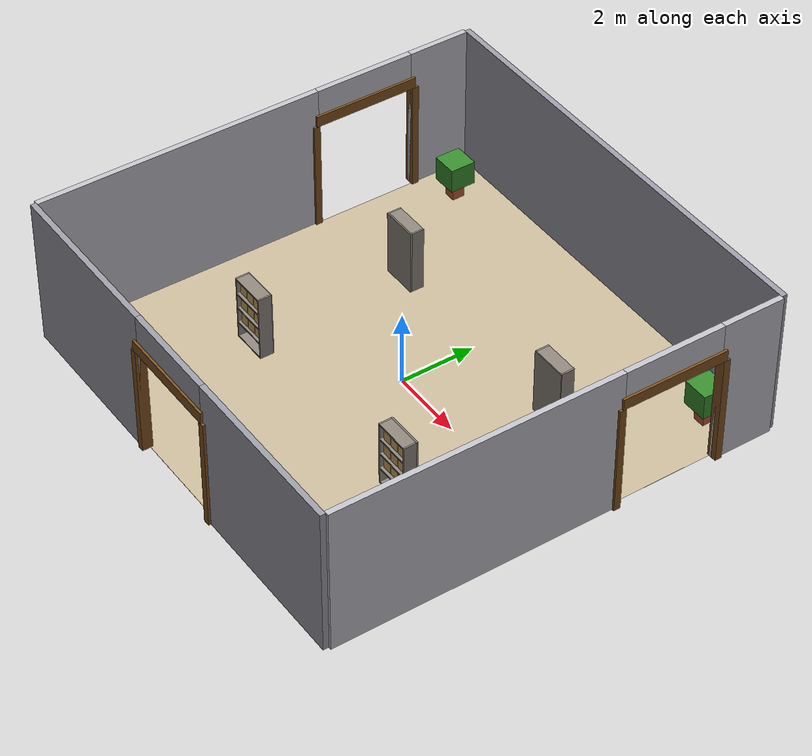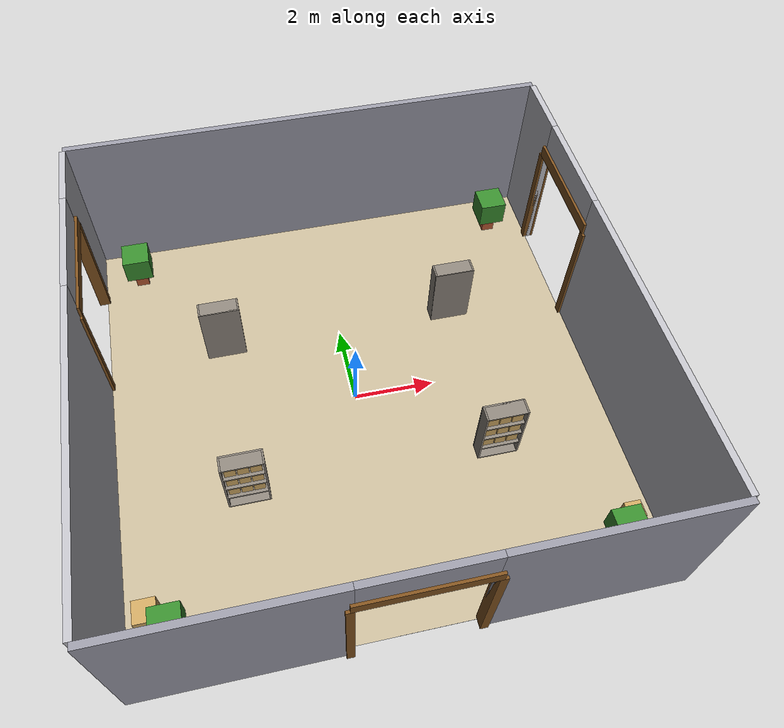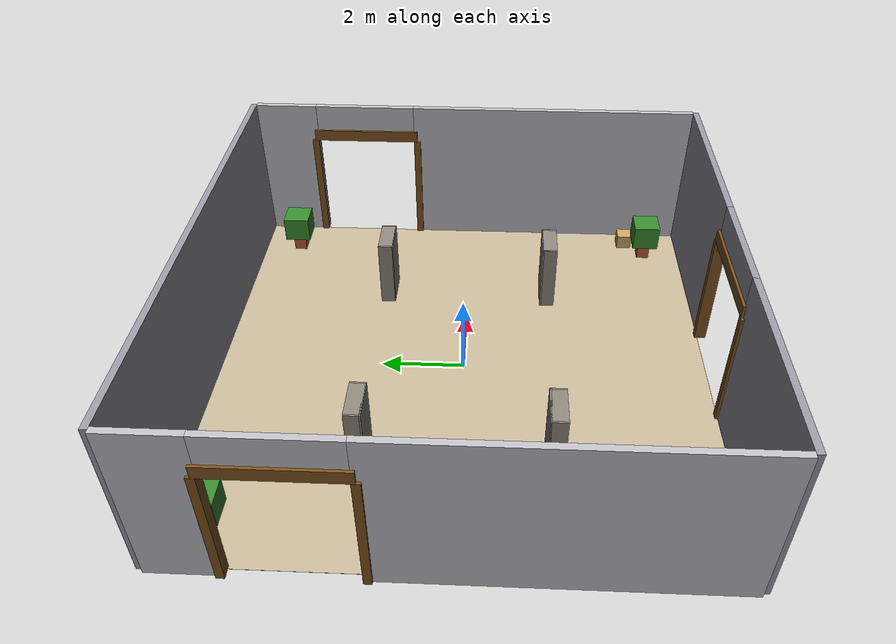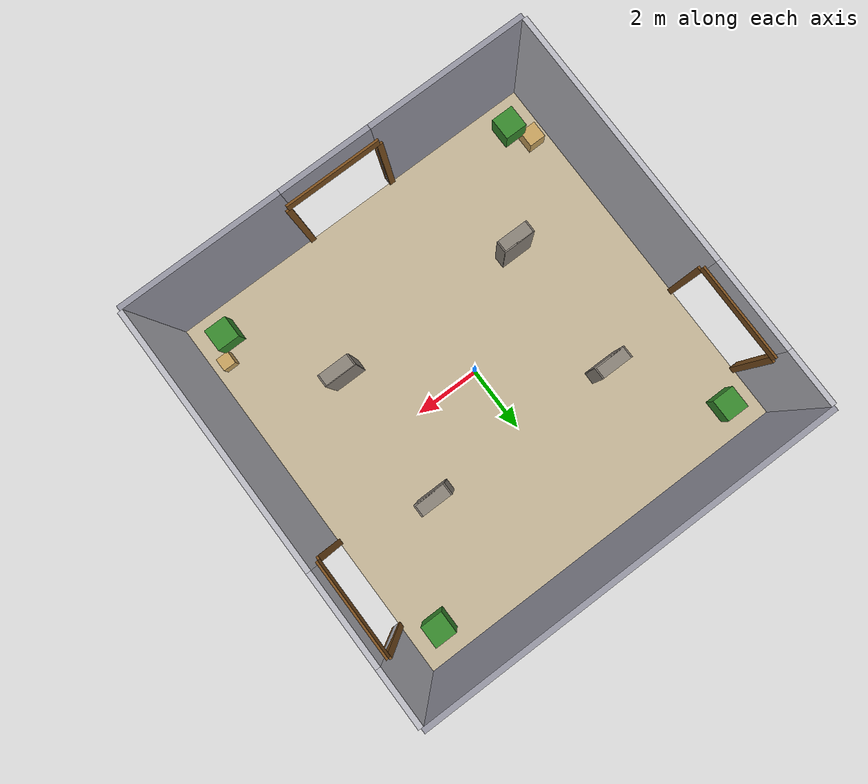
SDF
<?xml version="1.0"?>
<sdf version="1.8">
  <model name="room_a">
    <static>true</static>
    <pose>0 0 0 0 0 0</pose>
    <link name="floor_a">
      <pose>0.0 0.0 0.002 0 0 0</pose>
      <visual name="vis">
        <geometry><box><size>12.0 12.0 0.004</size></box></geometry>
        <material><ambient>0.78 0.72 0.6 1</ambient><diffuse>0.78 0.72 0.6 1</diffuse></material>
      </visual>
    </link>
    <link name="wall_a_s_l">
      <pose>-3.7125000000000004 -6.075 2.0 0 0 0</pose>
      <collision name="col"><geometry><box><size>4.725 0.15 4.0</size></box></geometry></collision>
      <visual name="vis">
        <geometry><box><size>4.725 0.15 4.0</size></box></geometry>
        <material><ambient>0.6 0.6 0.65 1</ambient><diffuse>0.6 0.6 0.65 1</diffuse></material>
      </visual>
    </link>
    <link name="wall_a_s_r">
      <pose>3.7125000000000004 -6.075 2.0 0 0 0</pose>
      <collision name="col"><geometry><box><size>4.725 0.15 4.0</size></box></geometry></collision>
      <visual name="vis">
        <geometry><box><size>4.725 0.15 4.0</size></box></geometry>
        <material><ambient>0.6 0.6 0.65 1</ambient><diffuse>0.6 0.6 0.65 1</diffuse></material>
      </visual>
    </link>
    <link name="wall_a_s_top">
      <pose>0.0 -6.075 3.5 0 0 0</pose>
      <collision name="col"><geometry><box><size>2.7 0.15 1.0</size></box></geometry></collision>
      <visual name="vis">
        <geometry><box><size>2.7 0.15 1.0</size></box></geometry>
        <material><ambient>0.6 0.6 0.65 1</ambient><diffuse>0.6 0.6 0.65 1</diffuse></material>
      </visual>
    </link>
    <link name="frm_entry_l">
      <pose>-1.4400000000000002 -6.075 1.5 0 0 0</pose>
      <visual name="vis">
        <geometry><box><size>0.18 0.28 3.0</size></box></geometry>
        <material><ambient>0.5 0.32 0.12 1</ambient><diffuse>0.5 0.32 0.12 1</diffuse></material>
      </visual>
    </link>
    <link name="frm_entry_r">
      <pose>1.4400000000000002 -6.075 1.5 0 0 0</pose>
      <visual name="vis">
        <geometry><box><size>0.18 0.28 3.0</size></box></geometry>
        <material><ambient>0.5 0.32 0.12 1</ambient><diffuse>0.5 0.32 0.12 1</diffuse></material>
      </visual>
    </link>
    <link name="frm_entry_t">
      <pose>0.0 -6.075 3.15 0 0 0</pose>
      <visual name="vis">
        <geometry><box><size>2.8800000000000003 0.28 0.3</size></box></geometry>
        <material><ambient>0.5 0.32 0.12 1</ambient><diffuse>0.5 0.32 0.12 1</diffuse></material>
      </visual>
    </link>
    <link name="wall_a_n">
      <pose>0.0 6.075 2.0 0 0 0</pose>
      <collision name="col"><geometry><box><size>12.15 0.15 4.0</size></box></geometry></collision>
      <visual name="vis">
        <geometry><box><size>12.15 0.15 4.0</size></box></geometry>
        <material><ambient>0.6 0.6 0.65 1</ambient><diffuse>0.6 0.6 0.65 1</diffuse></material>
      </visual>
    </link>
    <link name="wall_a_w_bot">
      <pose>-6.075 -2.175 2.0 0 0 0</pose>
      <collision name="col"><geometry><box><size>0.15 7.65 4.0</size></box></geometry></collision>
      <visual name="vis">
        <geometry><box><size>0.15 7.65 4.0</size></box></geometry>
        <material><ambient>0.75 0.75 0.78 1</ambient><diffuse>0.75 0.75 0.78 1</diffuse></material>
      </visual>
    </link>
    <link name="wall_a_w_top">
      <pose>-6.075 5.175 2.0 0 0 0</pose>
      <collision name="col"><geometry><box><size>0.15 1.6500000000000004 4.0</size></box></geometry></collision>
      <visual name="vis">
        <geometry><box><size>0.15 1.6500000000000004 4.0</size></box></geometry>
        <material><ambient>0.75 0.75 0.78 1</ambient><diffuse>0.75 0.75 0.78 1</diffuse></material>
      </visual>
    </link>
    <link name="wall_a_w_door_top">
      <pose>-6.075 3.0 3.5 0 0 0</pose>
      <collision name="col"><geometry><box><size>0.15 2.7 1.0</size></box></geometry></collision>
      <visual name="vis">
        <geometry><box><size>0.15 2.7 1.0</size></box></geometry>
        <material><ambient>0.75 0.75 0.78 1</ambient><diffuse>0.75 0.75 0.78 1</diffuse></material>
      </visual>
    </link>
    <link name="frm_ab_l">
      <pose>-6.075 1.5599999999999998 1.5 0 0 0</pose>
      <visual name="vis">
        <geometry><box><size>0.28 0.18 3.0</size></box></geometry>
        <material><ambient>0.5 0.32 0.12 1</ambient><diffuse>0.5 0.32 0.12 1</diffuse></material>
      </visual>
    </link>
    <link name="frm_ab_r">
      <pose>-6.075 4.44 1.5 0 0 0</pose>
      <visual name="vis">
        <geometry><box><size>0.28 0.18 3.0</size></box></geometry>
        <material><ambient>0.5 0.32 0.12 1</ambient><diffuse>0.5 0.32 0.12 1</diffuse></material>
      </visual>
    </link>
    <link name="frm_ab_t">
      <pose>-6.075 3.0 3.15 0 0 0</pose>
      <visual name="vis">
        <geometry><box><size>0.28 2.8800000000000003 0.3</size></box></geometry>
        <material><ambient>0.5 0.32 0.12 1</ambient><diffuse>0.5 0.32 0.12 1</diffuse></material>
      </visual>
    </link>
    <link name="wall_a_e_bot">
      <pose>6.075 -2.175 2.0 0 0 0</pose>
      <collision name="col"><geometry><box><size>0.15 7.65 4.0</size></box></geometry></collision>
      <visual name="vis">
        <geometry><box><size>0.15 7.65 4.0</size></box></geometry>
        <material><ambient>0.75 0.75 0.78 1</ambient><diffuse>0.75 0.75 0.78 1</diffuse></material>
      </visual>
    </link>
    <link name="wall_a_e_top">
      <pose>6.075 5.175 2.0 0 0 0</pose>
      <collision name="col"><geometry><box><size>0.15 1.6500000000000004 4.0</size></box></geometry></collision>
      <visual name="vis">
        <geometry><box><size>0.15 1.6500000000000004 4.0</size></box></geometry>
        <material><ambient>0.75 0.75 0.78 1</ambient><diffuse>0.75 0.75 0.78 1</diffuse></material>
      </visual>
    </link>
    <link name="wall_a_e_door_top">
      <pose>6.075 3.0 3.5 0 0 0</pose>
      <collision name="col"><geometry><box><size>0.15 2.7 1.0</size></box></geometry></collision>
      <visual name="vis">
        <geometry><box><size>0.15 2.7 1.0</size></box></geometry>
        <material><ambient>0.75 0.75 0.78 1</ambient><diffuse>0.75 0.75 0.78 1</diffuse></material>
      </visual>
    </link>
    <link name="frm_ac_l">
      <pose>6.075 1.5599999999999998 1.5 0 0 0</pose>
      <visual name="vis">
        <geometry><box><size>0.28 0.18 3.0</size></box></geometry>
        <material><ambient>0.5 0.32 0.12 1</ambient><diffuse>0.5 0.32 0.12 1</diffuse></material>
      </visual>
    </link>
    <link name="frm_ac_r">
      <pose>6.075 4.44 1.5 0 0 0</pose>
      <visual name="vis">
        <geometry><box><size>0.28 0.18 3.0</size></box></geometry>
        <material><ambient>0.5 0.32 0.12 1</ambient><diffuse>0.5 0.32 0.12 1</diffuse></material>
      </visual>
    </link>
    <link name="frm_ac_t">
      <pose>6.075 3.0 3.15 0 0 0</pose>
      <visual name="vis">
        <geometry><box><size>0.28 2.8800000000000003 0.3</size></box></geometry>
        <material><ambient>0.5 0.32 0.12 1</ambient><diffuse>0.5 0.32 0.12 1</diffuse></material>
      </visual>
    </link>
    <link name="shelf_a_r1a_back">
      <pose>-3.0 -1.97 0.9 0 0 0</pose>
      <collision name="col"><geometry><box><size>1.0 0.04 1.8</size></box></geometry></collision>
      <visual name="vis">
        <geometry><box><size>1.0 0.04 1.8</size></box></geometry>
        <material><ambient>0.55 0.52 0.48 1</ambient><diffuse>0.55 0.52 0.48 1</diffuse></material>
      </visual>
    </link>
    <link name="shelf_a_r1a_sl">
      <pose>-3.48 -2.15 0.9 0 0 0</pose>
      <collision name="col"><geometry><box><size>0.04 0.36000000000000004 1.8</size></box></geometry></collision>
      <visual name="vis">
        <geometry><box><size>0.04 0.36000000000000004 1.8</size></box></geometry>
        <material><ambient>0.55 0.52 0.48 1</ambient><diffuse>0.55 0.52 0.48 1</diffuse></material>
      </visual>
    </link>
    <link name="shelf_a_r1a_sr">
      <pose>-2.52 -2.15 0.9 0 0 0</pose>
      <collision name="col"><geometry><box><size>0.04 0.36000000000000004 1.8</size></box></geometry></collision>
      <visual name="vis">
        <geometry><box><size>0.04 0.36000000000000004 1.8</size></box></geometry>
        <material><ambient>0.55 0.52 0.48 1</ambient><diffuse>0.55 0.52 0.48 1</diffuse></material>
      </visual>
    </link>
    <link name="shelf_a_r1a_brd0">
      <pose>-3.0 -2.15 0.02 0 0 0</pose>
      <collision name="col"><geometry><box><size>0.92 0.36000000000000004 0.04</size></box></geometry></collision>
      <visual name="vis">
        <geometry><box><size>0.92 0.36000000000000004 0.04</size></box></geometry>
        <material><ambient>0.55 0.52 0.48 1</ambient><diffuse>0.55 0.52 0.48 1</diffuse></material>
      </visual>
    </link>
    <link name="shelf_a_r1a_brd1">
      <pose>-3.0 -2.15 0.46 0 0 0</pose>
      <collision name="col"><geometry><box><size>0.92 0.36000000000000004 0.04</size></box></geometry></collision>
      <visual name="vis">
        <geometry><box><size>0.92 0.36000000000000004 0.04</size></box></geometry>
        <material><ambient>0.55 0.52 0.48 1</ambient><diffuse>0.55 0.52 0.48 1</diffuse></material>
      </visual>
    </link>
    <link name="shelf_a_r1a_brd2">
      <pose>-3.0 -2.15 0.9 0 0 0</pose>
      <collision name="col"><geometry><box><size>0.92 0.36000000000000004 0.04</size></box></geometry></collision>
      <visual name="vis">
        <geometry><box><size>0.92 0.36000000000000004 0.04</size></box></geometry>
        <material><ambient>0.55 0.52 0.48 1</ambient><diffuse>0.55 0.52 0.48 1</diffuse></material>
      </visual>
    </link>
    <link name="shelf_a_r1a_brd3">
      <pose>-3.0 -2.15 1.34 0 0 0</pose>
      <collision name="col"><geometry><box><size>0.92 0.36000000000000004 0.04</size></box></geometry></collision>
      <visual name="vis">
        <geometry><box><size>0.92 0.36000000000000004 0.04</size></box></geometry>
        <material><ambient>0.55 0.52 0.48 1</ambient><diffuse>0.55 0.52 0.48 1</diffuse></material>
      </visual>
    </link>
    <link name="shelf_a_r1a_brd4">
      <pose>-3.0 -2.15 1.78 0 0 0</pose>
      <collision name="col"><geometry><box><size>0.92 0.36000000000000004 0.04</size></box></geometry></collision>
      <visual name="vis">
        <geometry><box><size>0.92 0.36000000000000004 0.04</size></box></geometry>
        <material><ambient>0.55 0.52 0.48 1</ambient><diffuse>0.55 0.52 0.48 1</diffuse></material>
      </visual>
    </link>
    <link name="shelf_a_r1a_bx10">
      <pose>-3.29 -2.12 0.61 0 0 0</pose>
      <collision name="col"><geometry><box><size>0.26 0.26 0.26</size></box></geometry></collision>
      <visual name="vis">
        <geometry><box><size>0.26 0.26 0.26</size></box></geometry>
        <material><ambient>0.8 0.65 0.38 1</ambient><diffuse>0.8 0.65 0.38 1</diffuse></material>
      </visual>
    </link>
    <link name="shelf_a_r1a_bx11">
      <pose>-3.0 -2.12 0.61 0 0 0</pose>
      <collision name="col"><geometry><box><size>0.26 0.26 0.26</size></box></geometry></collision>
      <visual name="vis">
        <geometry><box><size>0.26 0.26 0.26</size></box></geometry>
        <material><ambient>0.8 0.65 0.38 1</ambient><diffuse>0.8 0.65 0.38 1</diffuse></material>
      </visual>
    </link>
    <link name="shelf_a_r1a_bx12">
      <pose>-2.71 -2.12 0.61 0 0 0</pose>
      <collision name="col"><geometry><box><size>0.26 0.26 0.26</size></box></geometry></collision>
      <visual name="vis">
        <geometry><box><size>0.26 0.26 0.26</size></box></geometry>
        <material><ambient>0.8 0.65 0.38 1</ambient><diffuse>0.8 0.65 0.38 1</diffuse></material>
      </visual>
    </link>
    <link name="shelf_a_r1a_bx20">
      <pose>-3.29 -2.12 1.05 0 0 0</pose>
      <collision name="col"><geometry><box><size>0.26 0.26 0.26</size></box></geometry></collision>
      <visual name="vis">
        <geometry><box><size>0.26 0.26 0.26</size></box></geometry>
        <material><ambient>0.8 0.65 0.38 1</ambient><diffuse>0.8 0.65 0.38 1</diffuse></material>
      </visual>
    </link>
    <link name="shelf_a_r1a_bx21">
      <pose>-3.0 -2.12 1.05 0 0 0</pose>
      <collision name="col"><geometry><box><size>0.26 0.26 0.26</size></box></geometry></collision>
      <visual name="vis">
        <geometry><box><size>0.26 0.26 0.26</size></box></geometry>
        <material><ambient>0.8 0.65 0.38 1</ambient><diffuse>0.8 0.65 0.38 1</diffuse></material>
      </visual>
    </link>
    <link name="shelf_a_r1a_bx22">
      <pose>-2.71 -2.12 1.05 0 0 0</pose>
      <collision name="col"><geometry><box><size>0.26 0.26 0.26</size></box></geometry></collision>
      <visual name="vis">
        <geometry><box><size>0.26 0.26 0.26</size></box></geometry>
        <material><ambient>0.8 0.65 0.38 1</ambient><diffuse>0.8 0.65 0.38 1</diffuse></material>
      </visual>
    </link>
    <link name="shelf_a_r1a_bx30">
      <pose>-3.29 -2.12 1.4900000000000002 0 0 0</pose>
      <collision name="col"><geometry><box><size>0.26 0.26 0.26</size></box></geometry></collision>
      <visual name="vis">
        <geometry><box><size>0.26 0.26 0.26</size></box></geometry>
        <material><ambient>0.8 0.65 0.38 1</ambient><diffuse>0.8 0.65 0.38 1</diffuse></material>
      </visual>
    </link>
    <link name="shelf_a_r1a_bx31">
      <pose>-3.0 -2.12 1.4900000000000002 0 0 0</pose>
      <collision name="col"><geometry><box><size>0.26 0.26 0.26</size></box></geometry></collision>
      <visual name="vis">
        <geometry><box><size>0.26 0.26 0.26</size></box></geometry>
        <material><ambient>0.8 0.65 0.38 1</ambient><diffuse>0.8 0.65 0.38 1</diffuse></material>
      </visual>
    </link>
    <link name="shelf_a_r1a_bx32">
      <pose>-2.71 -2.12 1.4900000000000002 0 0 0</pose>
      <collision name="col"><geometry><box><size>0.26 0.26 0.26</size></box></geometry></collision>
      <visual name="vis">
        <geometry><box><size>0.26 0.26 0.26</size></box></geometry>
        <material><ambient>0.8 0.65 0.38 1</ambient><diffuse>0.8 0.65 0.38 1</diffuse></material>
      </visual>
    </link>
    <link name="shelf_a_r1b_back">
      <pose>3.0 -1.97 0.9 0 0 0</pose>
      <collision name="col"><geometry><box><size>1.0 0.04 1.8</size></box></geometry></collision>
      <visual name="vis">
        <geometry><box><size>1.0 0.04 1.8</size></box></geometry>
        <material><ambient>0.55 0.52 0.48 1</ambient><diffuse>0.55 0.52 0.48 1</diffuse></material>
      </visual>
    </link>
    <link name="shelf_a_r1b_sl">
      <pose>2.52 -2.15 0.9 0 0 0</pose>
      <collision name="col"><geometry><box><size>0.04 0.36000000000000004 1.8</size></box></geometry></collision>
      <visual name="vis">
        <geometry><box><size>0.04 0.36000000000000004 1.8</size></box></geometry>
        <material><ambient>0.55 0.52 0.48 1</ambient><diffuse>0.55 0.52 0.48 1</diffuse></material>
      </visual>
    </link>
    <link name="shelf_a_r1b_sr">
      <pose>3.48 -2.15 0.9 0 0 0</pose>
      <collision name="col"><geometry><box><size>0.04 0.36000000000000004 1.8</size></box></geometry></collision>
      <visual name="vis">
        <geometry><box><size>0.04 0.36000000000000004 1.8</size></box></geometry>
        <material><ambient>0.55 0.52 0.48 1</ambient><diffuse>0.55 0.52 0.48 1</diffuse></material>
      </visual>
    </link>
    <link name="shelf_a_r1b_brd0">
      <pose>3.0 -2.15 0.02 0 0 0</pose>
      <collision name="col"><geometry><box><size>0.92 0.36000000000000004 0.04</size></box></geometry></collision>
      <visual name="vis">
        <geometry><box><size>0.92 0.36000000000000004 0.04</size></box></geometry>
        <material><ambient>0.55 0.52 0.48 1</ambient><diffuse>0.55 0.52 0.48 1</diffuse></material>
      </visual>
    </link>
    <link name="shelf_a_r1b_brd1">
      <pose>3.0 -2.15 0.46 0 0 0</pose>
      <collision name="col"><geometry><box><size>0.92 0.36000000000000004 0.04</size></box></geometry></collision>
      <visual name="vis">
        <geometry><box><size>0.92 0.36000000000000004 0.04</size></box></geometry>
        <material><ambient>0.55 0.52 0.48 1</ambient><diffuse>0.55 0.52 0.48 1</diffuse></material>
      </visual>
    </link>
    <link name="shelf_a_r1b_brd2">
      <pose>3.0 -2.15 0.9 0 0 0</pose>
      <collision name="col"><geometry><box><size>0.92 0.36000000000000004 0.04</size></box></geometry></collision>
      <visual name="vis">
        <geometry><box><size>0.92 0.36000000000000004 0.04</size></box></geometry>
        <material><ambient>0.55 0.52 0.48 1</ambient><diffuse>0.55 0.52 0.48 1</diffuse></material>
      </visual>
    </link>
    <link name="shelf_a_r1b_brd3">
      <pose>3.0 -2.15 1.34 0 0 0</pose>
      <collision name="col"><geometry><box><size>0.92 0.36000000000000004 0.04</size></box></geometry></collision>
      <visual name="vis">
        <geometry><box><size>0.92 0.36000000000000004 0.04</size></box></geometry>
        <material><ambient>0.55 0.52 0.48 1</ambient><diffuse>0.55 0.52 0.48 1</diffuse></material>
      </visual>
    </link>
    <link name="shelf_a_r1b_brd4">
      <pose>3.0 -2.15 1.78 0 0 0</pose>
      <collision name="col"><geometry><box><size>0.92 0.36000000000000004 0.04</size></box></geometry></collision>
      <visual name="vis">
        <geometry><box><size>0.92 0.36000000000000004 0.04</size></box></geometry>
        <material><ambient>0.55 0.52 0.48 1</ambient><diffuse>0.55 0.52 0.48 1</diffuse></material>
      </visual>
    </link>
    <link name="shelf_a_r1b_bx10">
      <pose>2.71 -2.12 0.61 0 0 0</pose>
      <collision name="col"><geometry><box><size>0.26 0.26 0.26</size></box></geometry></collision>
      <visual name="vis">
        <geometry><box><size>0.26 0.26 0.26</size></box></geometry>
        <material><ambient>0.8 0.65 0.38 1</ambient><diffuse>0.8 0.65 0.38 1</diffuse></material>
      </visual>
    </link>
    <link name="shelf_a_r1b_bx11">
      <pose>3.0 -2.12 0.61 0 0 0</pose>
      <collision name="col"><geometry><box><size>0.26 0.26 0.26</size></box></geometry></collision>
      <visual name="vis">
        <geometry><box><size>0.26 0.26 0.26</size></box></geometry>
        <material><ambient>0.8 0.65 0.38 1</ambient><diffuse>0.8 0.65 0.38 1</diffuse></material>
      </visual>
    </link>
    <link name="shelf_a_r1b_bx12">
      <pose>3.29 -2.12 0.61 0 0 0</pose>
      <collision name="col"><geometry><box><size>0.26 0.26 0.26</size></box></geometry></collision>
      <visual name="vis">
        <geometry><box><size>0.26 0.26 0.26</size></box></geometry>
        <material><ambient>0.8 0.65 0.38 1</ambient><diffuse>0.8 0.65 0.38 1</diffuse></material>
      </visual>
    </link>
    <link name="shelf_a_r1b_bx20">
      <pose>2.71 -2.12 1.05 0 0 0</pose>
      <collision name="col"><geometry><box><size>0.26 0.26 0.26</size></box></geometry></collision>
      <visual name="vis">
        <geometry><box><size>0.26 0.26 0.26</size></box></geometry>
        <material><ambient>0.8 0.65 0.38 1</ambient><diffuse>0.8 0.65 0.38 1</diffuse></material>
      </visual>
    </link>
    <link name="shelf_a_r1b_bx21">
      <pose>3.0 -2.12 1.05 0 0 0</pose>
      <collision name="col"><geometry><box><size>0.26 0.26 0.26</size></box></geometry></collision>
      <visual name="vis">
        <geometry><box><size>0.26 0.26 0.26</size></box></geometry>
        <material><ambient>0.8 0.65 0.38 1</ambient><diffuse>0.8 0.65 0.38 1</diffuse></material>
      </visual>
    </link>
    <link name="shelf_a_r1b_bx22">
      <pose>3.29 -2.12 1.05 0 0 0</pose>
      <collision name="col"><geometry><box><size>0.26 0.26 0.26</size></box></geometry></collision>
      <visual name="vis">
        <geometry><box><size>0.26 0.26 0.26</size></box></geometry>
        <material><ambient>0.8 0.65 0.38 1</ambient><diffuse>0.8 0.65 0.38 1</diffuse></material>
      </visual>
    </link>
    <link name="shelf_a_r1b_bx30">
      <pose>2.71 -2.12 1.4900000000000002 0 0 0</pose>
      <collision name="col"><geometry><box><size>0.26 0.26 0.26</size></box></geometry></collision>
      <visual name="vis">
        <geometry><box><size>0.26 0.26 0.26</size></box></geometry>
        <material><ambient>0.8 0.65 0.38 1</ambient><diffuse>0.8 0.65 0.38 1</diffuse></material>
      </visual>
    </link>
    <link name="shelf_a_r1b_bx31">
      <pose>3.0 -2.12 1.4900000000000002 0 0 0</pose>
      <collision name="col"><geometry><box><size>0.26 0.26 0.26</size></box></geometry></collision>
      <visual name="vis">
        <geometry><box><size>0.26 0.26 0.26</size></box></geometry>
        <material><ambient>0.8 0.65 0.38 1</ambient><diffuse>0.8 0.65 0.38 1</diffuse></material>
      </visual>
    </link>
    <link name="shelf_a_r1b_bx32">
      <pose>3.29 -2.12 1.4900000000000002 0 0 0</pose>
      <collision name="col"><geometry><box><size>0.26 0.26 0.26</size></box></geometry></collision>
      <visual name="vis">
        <geometry><box><size>0.26 0.26 0.26</size></box></geometry>
        <material><ambient>0.8 0.65 0.38 1</ambient><diffuse>0.8 0.65 0.38 1</diffuse></material>
      </visual>
    </link>
    <link name="shelf_a_r2a_back">
      <pose>-3.0 1.97 0.9 0 0 0</pose>
      <collision name="col"><geometry><box><size>1.0 0.04 1.8</size></box></geometry></collision>
      <visual name="vis">
        <geometry><box><size>1.0 0.04 1.8</size></box></geometry>
        <material><ambient>0.55 0.52 0.48 1</ambient><diffuse>0.55 0.52 0.48 1</diffuse></material>
      </visual>
    </link>
    <link name="shelf_a_r2a_sl">
      <pose>-3.48 2.15 0.9 0 0 0</pose>
      <collision name="col"><geometry><box><size>0.04 0.36000000000000004 1.8</size></box></geometry></collision>
      <visual name="vis">
        <geometry><box><size>0.04 0.36000000000000004 1.8</size></box></geometry>
        <material><ambient>0.55 0.52 0.48 1</ambient><diffuse>0.55 0.52 0.48 1</diffuse></material>
      </visual>
    </link>
    <link name="shelf_a_r2a_sr">
      <pose>-2.52 2.15 0.9 0 0 0</pose>
      <collision name="col"><geometry><box><size>0.04 0.36000000000000004 1.8</size></box></geometry></collision>
      <visual name="vis">
        <geometry><box><size>0.04 0.36000000000000004 1.8</size></box></geometry>
        <material><ambient>0.55 0.52 0.48 1</ambient><diffuse>0.55 0.52 0.48 1</diffuse></material>
      </visual>
    </link>
    <link name="shelf_a_r2a_brd0">
      <pose>-3.0 2.15 0.02 0 0 0</pose>
      <collision name="col"><geometry><box><size>0.92 0.36000000000000004 0.04</size></box></geometry></collision>
      <visual name="vis">
        <geometry><box><size>0.92 0.36000000000000004 0.04</size></box></geometry>
        <material><ambient>0.55 0.52 0.48 1</ambient><diffuse>0.55 0.52 0.48 1</diffuse></material>
      </visual>
    </link>
    <link name="shelf_a_r2a_brd1">
      <pose>-3.0 2.15 0.46 0 0 0</pose>
      <collision name="col"><geometry><box><size>0.92 0.36000000000000004 0.04</size></box></geometry></collision>
      <visual name="vis">
        <geometry><box><size>0.92 0.36000000000000004 0.04</size></box></geometry>
        <material><ambient>0.55 0.52 0.48 1</ambient><diffuse>0.55 0.52 0.48 1</diffuse></material>
      </visual>
    </link>
    <link name="shelf_a_r2a_brd2">
      <pose>-3.0 2.15 0.9 0 0 0</pose>
      <collision name="col"><geometry><box><size>0.92 0.36000000000000004 0.04</size></box></geometry></collision>
      <visual name="vis">
        <geometry><box><size>0.92 0.36000000000000004 0.04</size></box></geometry>
        <material><ambient>0.55 0.52 0.48 1</ambient><diffuse>0.55 0.52 0.48 1</diffuse></material>
      </visual>
    </link>
    <link name="shelf_a_r2a_brd3">
      <pose>-3.0 2.15 1.34 0 0 0</pose>
      <collision name="col"><geometry><box><size>0.92 0.36000000000000004 0.04</size></box></geometry></collision>
      <visual name="vis">
        <geometry><box><size>0.92 0.36000000000000004 0.04</size></box></geometry>
        <material><ambient>0.55 0.52 0.48 1</ambient><diffuse>0.55 0.52 0.48 1</diffuse></material>
      </visual>
    </link>
    <link name="shelf_a_r2a_brd4">
      <pose>-3.0 2.15 1.78 0 0 0</pose>
      <collision name="col"><geometry><box><size>0.92 0.36000000000000004 0.04</size></box></geometry></collision>
      <visual name="vis">
        <geometry><box><size>0.92 0.36000000000000004 0.04</size></box></geometry>
        <material><ambient>0.55 0.52 0.48 1</ambient><diffuse>0.55 0.52 0.48 1</diffuse></material>
      </visual>
    </link>
    <link name="shelf_a_r2a_bx10">
      <pose>-3.29 2.12 0.61 0 0 0</pose>
      <collision name="col"><geometry><box><size>0.26 0.26 0.26</size></box></geometry></collision>
      <visual name="vis">
        <geometry><box><size>0.26 0.26 0.26</size></box></geometry>
        <material><ambient>0.8 0.65 0.38 1</ambient><diffuse>0.8 0.65 0.38 1</diffuse></material>
      </visual>
    </link>
    <link name="shelf_a_r2a_bx11">
      <pose>-3.0 2.12 0.61 0 0 0</pose>
      <collision name="col"><geometry><box><size>0.26 0.26 0.26</size></box></geometry></collision>
      <visual name="vis">
        <geometry><box><size>0.26 0.26 0.26</size></box></geometry>
        <material><ambient>0.8 0.65 0.38 1</ambient><diffuse>0.8 0.65 0.38 1</diffuse></material>
      </visual>
    </link>
    <link name="shelf_a_r2a_bx12">
      <pose>-2.71 2.12 0.61 0 0 0</pose>
      <collision name="col"><geometry><box><size>0.26 0.26 0.26</size></box></geometry></collision>
      <visual name="vis">
        <geometry><box><size>0.26 0.26 0.26</size></box></geometry>
        <material><ambient>0.8 0.65 0.38 1</ambient><diffuse>0.8 0.65 0.38 1</diffuse></material>
      </visual>
    </link>
    <link name="shelf_a_r2a_bx20">
      <pose>-3.29 2.12 1.05 0 0 0</pose>
      <collision name="col"><geometry><box><size>0.26 0.26 0.26</size></box></geometry></collision>
      <visual name="vis">
        <geometry><box><size>0.26 0.26 0.26</size></box></geometry>
        <material><ambient>0.8 0.65 0.38 1</ambient><diffuse>0.8 0.65 0.38 1</diffuse></material>
      </visual>
    </link>
    <link name="shelf_a_r2a_bx21">
      <pose>-3.0 2.12 1.05 0 0 0</pose>
      <collision name="col"><geometry><box><size>0.26 0.26 0.26</size></box></geometry></collision>
      <visual name="vis">
        <geometry><box><size>0.26 0.26 0.26</size></box></geometry>
        <material><ambient>0.8 0.65 0.38 1</ambient><diffuse>0.8 0.65 0.38 1</diffuse></material>
      </visual>
    </link>
    <link name="shelf_a_r2a_bx22">
      <pose>-2.71 2.12 1.05 0 0 0</pose>
      <collision name="col"><geometry><box><size>0.26 0.26 0.26</size></box></geometry></collision>
      <visual name="vis">
        <geometry><box><size>0.26 0.26 0.26</size></box></geometry>
        <material><ambient>0.8 0.65 0.38 1</ambient><diffuse>0.8 0.65 0.38 1</diffuse></material>
      </visual>
    </link>
    <link name="shelf_a_r2a_bx30">
      <pose>-3.29 2.12 1.4900000000000002 0 0 0</pose>
      <collision name="col"><geometry><box><size>0.26 0.26 0.26</size></box></geometry></collision>
      <visual name="vis">
        <geometry><box><size>0.26 0.26 0.26</size></box></geometry>
        <material><ambient>0.8 0.65 0.38 1</ambient><diffuse>0.8 0.65 0.38 1</diffuse></material>
      </visual>
    </link>
    <link name="shelf_a_r2a_bx31">
      <pose>-3.0 2.12 1.4900000000000002 0 0 0</pose>
      <collision name="col"><geometry><box><size>0.26 0.26 0.26</size></box></geometry></collision>
      <visual name="vis">
        <geometry><box><size>0.26 0.26 0.26</size></box></geometry>
        <material><ambient>0.8 0.65 0.38 1</ambient><diffuse>0.8 0.65 0.38 1</diffuse></material>
      </visual>
    </link>
    <link name="shelf_a_r2a_bx32">
      <pose>-2.71 2.12 1.4900000000000002 0 0 0</pose>
      <collision name="col"><geometry><box><size>0.26 0.26 0.26</size></box></geometry></collision>
      <visual name="vis">
        <geometry><box><size>0.26 0.26 0.26</size></box></geometry>
        <material><ambient>0.8 0.65 0.38 1</ambient><diffuse>0.8 0.65 0.38 1</diffuse></material>
      </visual>
    </link>
    <link name="shelf_a_r2b_back">
      <pose>3.0 1.97 0.9 0 0 0</pose>
      <collision name="col"><geometry><box><size>1.0 0.04 1.8</size></box></geometry></collision>
      <visual name="vis">
        <geometry><box><size>1.0 0.04 1.8</size></box></geometry>
        <material><ambient>0.55 0.52 0.48 1</ambient><diffuse>0.55 0.52 0.48 1</diffuse></material>
      </visual>
    </link>
    <link name="shelf_a_r2b_sl">
      <pose>2.52 2.15 0.9 0 0 0</pose>
      <collision name="col"><geometry><box><size>0.04 0.36000000000000004 1.8</size></box></geometry></collision>
      <visual name="vis">
        <geometry><box><size>0.04 0.36000000000000004 1.8</size></box></geometry>
        <material><ambient>0.55 0.52 0.48 1</ambient><diffuse>0.55 0.52 0.48 1</diffuse></material>
      </visual>
    </link>
    <link name="shelf_a_r2b_sr">
      <pose>3.48 2.15 0.9 0 0 0</pose>
      <collision name="col"><geometry><box><size>0.04 0.36000000000000004 1.8</size></box></geometry></collision>
      <visual name="vis">
        <geometry><box><size>0.04 0.36000000000000004 1.8</size></box></geometry>
        <material><ambient>0.55 0.52 0.48 1</ambient><diffuse>0.55 0.52 0.48 1</diffuse></material>
      </visual>
    </link>
    <link name="shelf_a_r2b_brd0">
      <pose>3.0 2.15 0.02 0 0 0</pose>
      <collision name="col"><geometry><box><size>0.92 0.36000000000000004 0.04</size></box></geometry></collision>
      <visual name="vis">
        <geometry><box><size>0.92 0.36000000000000004 0.04</size></box></geometry>
        <material><ambient>0.55 0.52 0.48 1</ambient><diffuse>0.55 0.52 0.48 1</diffuse></material>
      </visual>
    </link>
    <link name="shelf_a_r2b_brd1">
      <pose>3.0 2.15 0.46 0 0 0</pose>
      <collision name="col"><geometry><box><size>0.92 0.36000000000000004 0.04</size></box></geometry></collision>
      <visual name="vis">
        <geometry><box><size>0.92 0.36000000000000004 0.04</size></box></geometry>
        <material><ambient>0.55 0.52 0.48 1</ambient><diffuse>0.55 0.52 0.48 1</diffuse></material>
      </visual>
    </link>
    <link name="shelf_a_r2b_brd2">
      <pose>3.0 2.15 0.9 0 0 0</pose>
      <collision name="col"><geometry><box><size>0.92 0.36000000000000004 0.04</size></box></geometry></collision>
      <visual name="vis">
        <geometry><box><size>0.92 0.36000000000000004 0.04</size></box></geometry>
        <material><ambient>0.55 0.52 0.48 1</ambient><diffuse>0.55 0.52 0.48 1</diffuse></material>
      </visual>
    </link>
    <link name="shelf_a_r2b_brd3">
      <pose>3.0 2.15 1.34 0 0 0</pose>
      <collision name="col"><geometry><box><size>0.92 0.36000000000000004 0.04</size></box></geometry></collision>
      <visual name="vis">
        <geometry><box><size>0.92 0.36000000000000004 0.04</size></box></geometry>
        <material><ambient>0.55 0.52 0.48 1</ambient><diffuse>0.55 0.52 0.48 1</diffuse></material>
      </visual>
    </link>
    <link name="shelf_a_r2b_brd4">
      <pose>3.0 2.15 1.78 0 0 0</pose>
      <collision name="col"><geometry><box><size>0.92 0.36000000000000004 0.04</size></box></geometry></collision>
      <visual name="vis">
        <geometry><box><size>0.92 0.36000000000000004 0.04</size></box></geometry>
        <material><ambient>0.55 0.52 0.48 1</ambient><diffuse>0.55 0.52 0.48 1</diffuse></material>
      </visual>
    </link>
    <link name="shelf_a_r2b_bx10">
      <pose>2.71 2.12 0.61 0 0 0</pose>
      <collision name="col"><geometry><box><size>0.26 0.26 0.26</size></box></geometry></collision>
      <visual name="vis">
        <geometry><box><size>0.26 0.26 0.26</size></box></geometry>
        <material><ambient>0.8 0.65 0.38 1</ambient><diffuse>0.8 0.65 0.38 1</diffuse></material>
      </visual>
    </link>
    <link name="shelf_a_r2b_bx11">
      <pose>3.0 2.12 0.61 0 0 0</pose>
      <collision name="col"><geometry><box><size>0.26 0.26 0.26</size></box></geometry></collision>
      <visual name="vis">
        <geometry><box><size>0.26 0.26 0.26</size></box></geometry>
        <material><ambient>0.8 0.65 0.38 1</ambient><diffuse>0.8 0.65 0.38 1</diffuse></material>
      </visual>
    </link>
    <link name="shelf_a_r2b_bx12">
      <pose>3.29 2.12 0.61 0 0 0</pose>
      <collision name="col"><geometry><box><size>0.26 0.26 0.26</size></box></geometry></collision>
      <visual name="vis">
        <geometry><box><size>0.26 0.26 0.26</size></box></geometry>
        <material><ambient>0.8 0.65 0.38 1</ambient><diffuse>0.8 0.65 0.38 1</diffuse></material>
      </visual>
    </link>
    <link name="shelf_a_r2b_bx20">
      <pose>2.71 2.12 1.05 0 0 0</pose>
      <collision name="col"><geometry><box><size>0.26 0.26 0.26</size></box></geometry></collision>
      <visual name="vis">
        <geometry><box><size>0.26 0.26 0.26</size></box></geometry>
        <material><ambient>0.8 0.65 0.38 1</ambient><diffuse>0.8 0.65 0.38 1</diffuse></material>
      </visual>
    </link>
    <link name="shelf_a_r2b_bx21">
      <pose>3.0 2.12 1.05 0 0 0</pose>
      <collision name="col"><geometry><box><size>0.26 0.26 0.26</size></box></geometry></collision>
      <visual name="vis">
        <geometry><box><size>0.26 0.26 0.26</size></box></geometry>
        <material><ambient>0.8 0.65 0.38 1</ambient><diffuse>0.8 0.65 0.38 1</diffuse></material>
      </visual>
    </link>
    <link name="shelf_a_r2b_bx22">
      <pose>3.29 2.12 1.05 0 0 0</pose>
      <collision name="col"><geometry><box><size>0.26 0.26 0.26</size></box></geometry></collision>
      <visual name="vis">
        <geometry><box><size>0.26 0.26 0.26</size></box></geometry>
        <material><ambient>0.8 0.65 0.38 1</ambient><diffuse>0.8 0.65 0.38 1</diffuse></material>
      </visual>
    </link>
    <link name="shelf_a_r2b_bx30">
      <pose>2.71 2.12 1.4900000000000002 0 0 0</pose>
      <collision name="col"><geometry><box><size>0.26 0.26 0.26</size></box></geometry></collision>
      <visual name="vis">
        <geometry><box><size>0.26 0.26 0.26</size></box></geometry>
        <material><ambient>0.8 0.65 0.38 1</ambient><diffuse>0.8 0.65 0.38 1</diffuse></material>
      </visual>
    </link>
    <link name="shelf_a_r2b_bx31">
      <pose>3.0 2.12 1.4900000000000002 0 0 0</pose>
      <collision name="col"><geometry><box><size>0.26 0.26 0.26</size></box></geometry></collision>
      <visual name="vis">
        <geometry><box><size>0.26 0.26 0.26</size></box></geometry>
        <material><ambient>0.8 0.65 0.38 1</ambient><diffuse>0.8 0.65 0.38 1</diffuse></material>
      </visual>
    </link>
    <link name="shelf_a_r2b_bx32">
      <pose>3.29 2.12 1.4900000000000002 0 0 0</pose>
      <collision name="col"><geometry><box><size>0.26 0.26 0.26</size></box></geometry></collision>
      <visual name="vis">
        <geometry><box><size>0.26 0.26 0.26</size></box></geometry>
        <material><ambient>0.8 0.65 0.38 1</ambient><diffuse>0.8 0.65 0.38 1</diffuse></material>
      </visual>
    </link>
    <link name="plant_a_sw_pot">
      <pose>-5.0 -5.0 0.225 0 0 0</pose>
      <collision name="col"><geometry><box><size>0.33 0.33 0.45</size></box></geometry></collision>
      <visual name="vis">
        <geometry><box><size>0.33 0.33 0.45</size></box></geometry>
        <material><ambient>0.72 0.35 0.2 1</ambient><diffuse>0.72 0.35 0.2 1</diffuse></material>
      </visual>
    </link>
    <link name="plant_a_sw_leaves">
      <pose>-5.0 -5.0 0.78 0 0 0</pose>
      <collision name="col"><geometry><box><size>0.69 0.69 0.66</size></box></geometry></collision>
      <visual name="vis">
        <geometry><box><size>0.69 0.69 0.66</size></box></geometry>
        <material><ambient>0.22 0.55 0.18 1</ambient><diffuse>0.22 0.55 0.18 1</diffuse></material>
      </visual>
    </link>
    <link name="plant_a_se_pot">
      <pose>5.0 -5.0 0.225 0 0 0</pose>
      <collision name="col"><geometry><box><size>0.33 0.33 0.45</size></box></geometry></collision>
      <visual name="vis">
        <geometry><box><size>0.33 0.33 0.45</size></box></geometry>
        <material><ambient>0.72 0.35 0.2 1</ambient><diffuse>0.72 0.35 0.2 1</diffuse></material>
      </visual>
    </link>
    <link name="plant_a_se_leaves">
      <pose>5.0 -5.0 0.78 0 0 0</pose>
      <collision name="col"><geometry><box><size>0.69 0.69 0.66</size></box></geometry></collision>
      <visual name="vis">
        <geometry><box><size>0.69 0.69 0.66</size></box></geometry>
        <material><ambient>0.22 0.55 0.18 1</ambient><diffuse>0.22 0.55 0.18 1</diffuse></material>
      </visual>
    </link>
    <link name="plant_a_nw_pot">
      <pose>-5.0 5.0 0.225 0 0 0</pose>
      <collision name="col"><geometry><box><size>0.33 0.33 0.45</size></box></geometry></collision>
      <visual name="vis">
        <geometry><box><size>0.33 0.33 0.45</size></box></geometry>
        <material><ambient>0.72 0.35 0.2 1</ambient><diffuse>0.72 0.35 0.2 1</diffuse></material>
      </visual>
    </link>
    <link name="plant_a_nw_leaves">
      <pose>-5.0 5.0 0.78 0 0 0</pose>
      <collision name="col"><geometry><box><size>0.69 0.69 0.66</size></box></geometry></collision>
      <visual name="vis">
        <geometry><box><size>0.69 0.69 0.66</size></box></geometry>
        <material><ambient>0.22 0.55 0.18 1</ambient><diffuse>0.22 0.55 0.18 1</diffuse></material>
      </visual>
    </link>
    <link name="plant_a_ne_pot">
      <pose>5.0 5.0 0.225 0 0 0</pose>
      <collision name="col"><geometry><box><size>0.33 0.33 0.45</size></box></geometry></collision>
      <visual name="vis">
        <geometry><box><size>0.33 0.33 0.45</size></box></geometry>
        <material><ambient>0.72 0.35 0.2 1</ambient><diffuse>0.72 0.35 0.2 1</diffuse></material>
      </visual>
    </link>
    <link name="plant_a_ne_leaves">
      <pose>5.0 5.0 0.78 0 0 0</pose>
      <collision name="col"><geometry><box><size>0.69 0.69 0.66</size></box></geometry></collision>
      <visual name="vis">
        <geometry><box><size>0.69 0.69 0.66</size></box></geometry>
        <material><ambient>0.22 0.55 0.18 1</ambient><diffuse>0.22 0.55 0.18 1</diffuse></material>
      </visual>
    </link>
    <link name="fbox_a1">
      <pose>5.5 -4.5 0.2 0 0 0</pose>
      <collision name="col"><geometry><box><size>0.4 0.4 0.4</size></box></geometry></collision>
      <visual name="vis">
        <geometry><box><size>0.4 0.4 0.4</size></box></geometry>
        <material><ambient>0.8 0.65 0.38 1</ambient><diffuse>0.8 0.65 0.38 1</diffuse></material>
      </visual>
    </link>
    <link name="fbox_a2">
      <pose>-5.5 -4.5 0.26 0 0 0</pose>
      <collision name="col"><geometry><box><size>0.52 0.52 0.52</size></box></geometry></collision>
      <visual name="vis">
        <geometry><box><size>0.52 0.52 0.52</size></box></geometry>
        <material><ambient>0.8 0.65 0.38 1</ambient><diffuse>0.8 0.65 0.38 1</diffuse></material>
      </visual>
    </link>
  </model>
</sdf>
